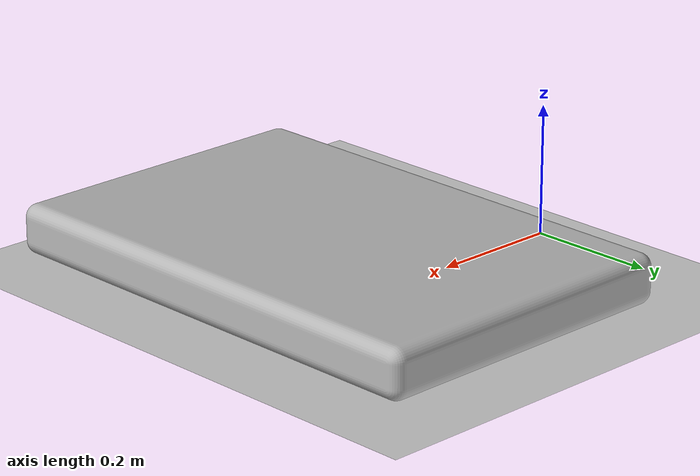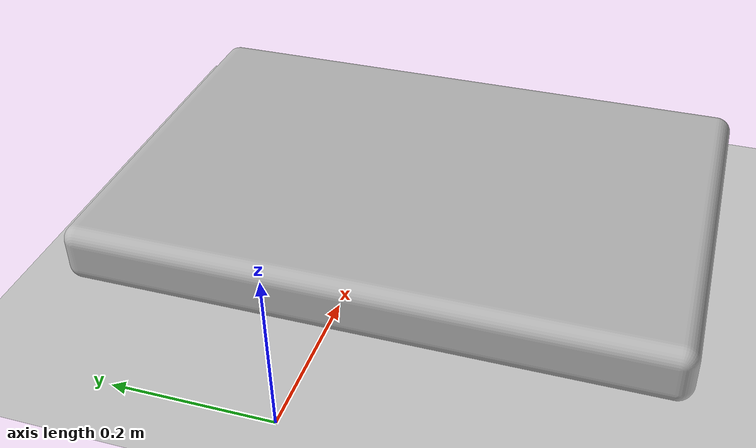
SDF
<?xml version ='1.0'?>
<sdf version ='1.4'>
  <world name='default'>
    <include>
      <uri>model://ground_plane</uri>
    </include>

    <include>
      <uri>model://sun</uri>
    </include>

    <include>
      <pose>0.38 -0.05 0.02 0 0 0 </pose>
      <uri>model://bed</uri>
    </include>

<!-- will spawn them once training start -->

    <!-- uncomment if want trainign to be done in brick room backgrond -->

    <plugin filename="libworld_edit.so" name="world_edit"/>
  </world>
</sdf>

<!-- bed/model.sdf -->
<sdf version="1.4">
  <model name="bed">
    <static>false</static>
    <link name="link">
      <!-- Random Inertia and Mass -->
      <inertial>
        <mass>1.0</mass>
        <inertia>
          <!-- inertias are tricky to compute -->
          <!-- http://gazebosim.org/tutorials?tut=inertia&cat=build_robot -->
          <ixx>0.083</ixx> <!-- for a box: ixx = 0.083 * mass * (y*y + z*z) -->
          <ixy>0.0</ixy> <!-- for a box: ixy = 0 -->
          <ixz>0.0</ixz> <!-- for a box: ixz = 0 -->
          <iyy>0.083</iyy> <!-- for a box: iyy = 0.083 * mass * (x*x + z*z) -->
          <iyz>0.0</iyz> <!-- for a box: iyz = 0 -->
          <izz>0.083</izz> <!-- for a box: izz = 0.083 * mass * (x*x + y*y) -->
        </inertia>
      </inertial>
      <collision name="body">
        <pose>0 0 0.00 0 0 0</pose>
        <geometry>
          <mesh>
            <uri>model://bed/meshes/bed.stl</uri>
            <scale> 0.001 0.001 0.001</scale>
          </mesh>
        </geometry>
      </collision>
      <visual name="body">
        <pose>0 0 0 0 0 0</pose>
        <geometry>
          <mesh>
            <uri>model://bed/meshes/bed.stl</uri>
            <scale> 0.001 0.001 0.001</scale>
          </mesh>
        </geometry>
      </visual>

    </link>
  </model>
</sdf>
